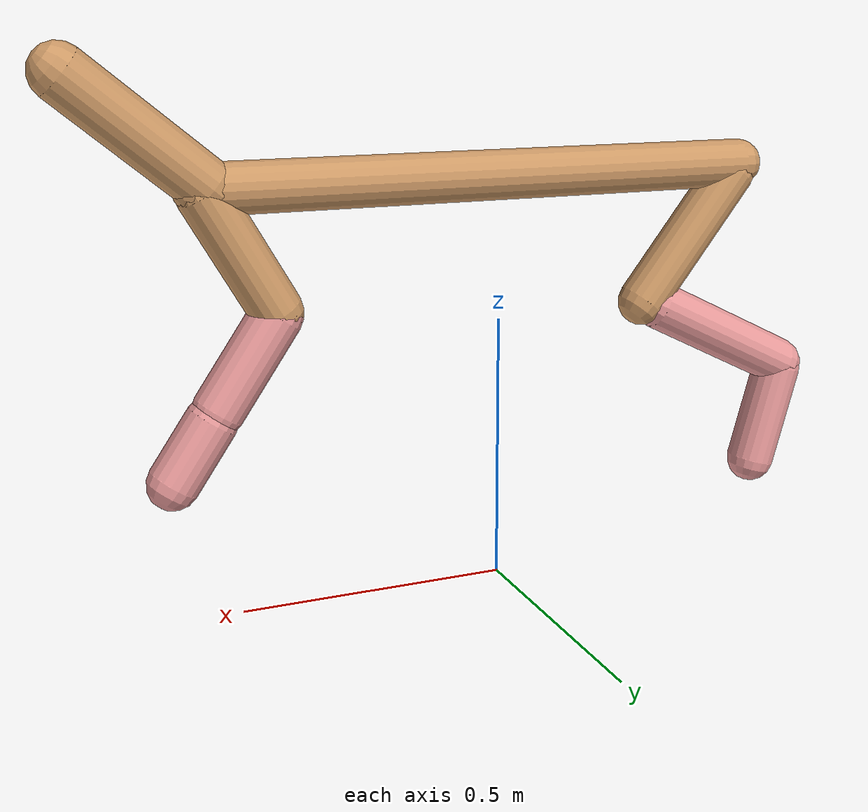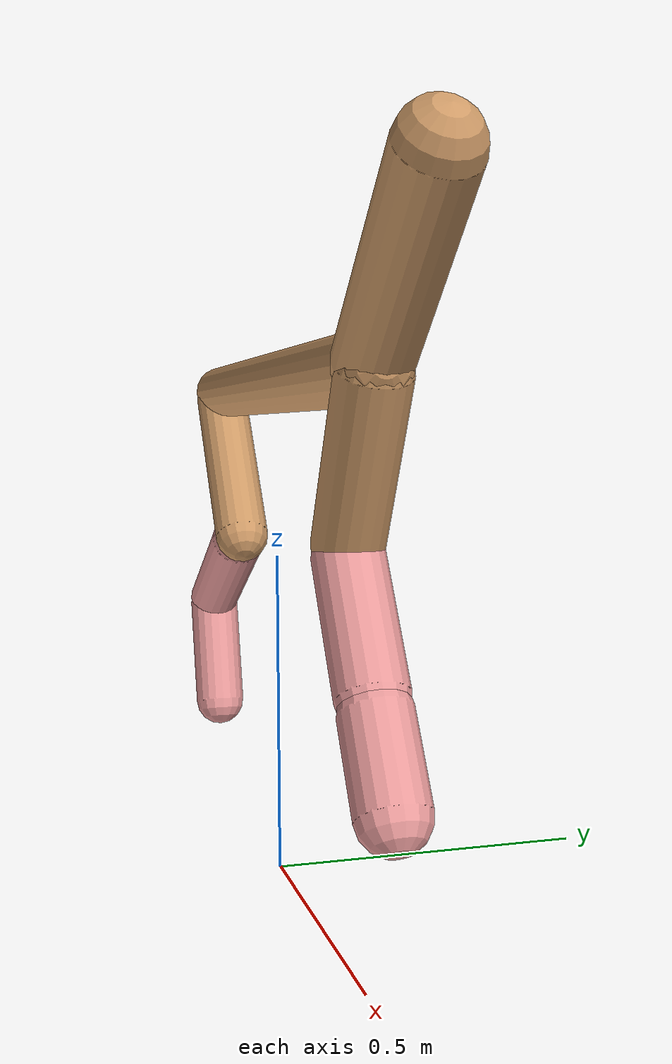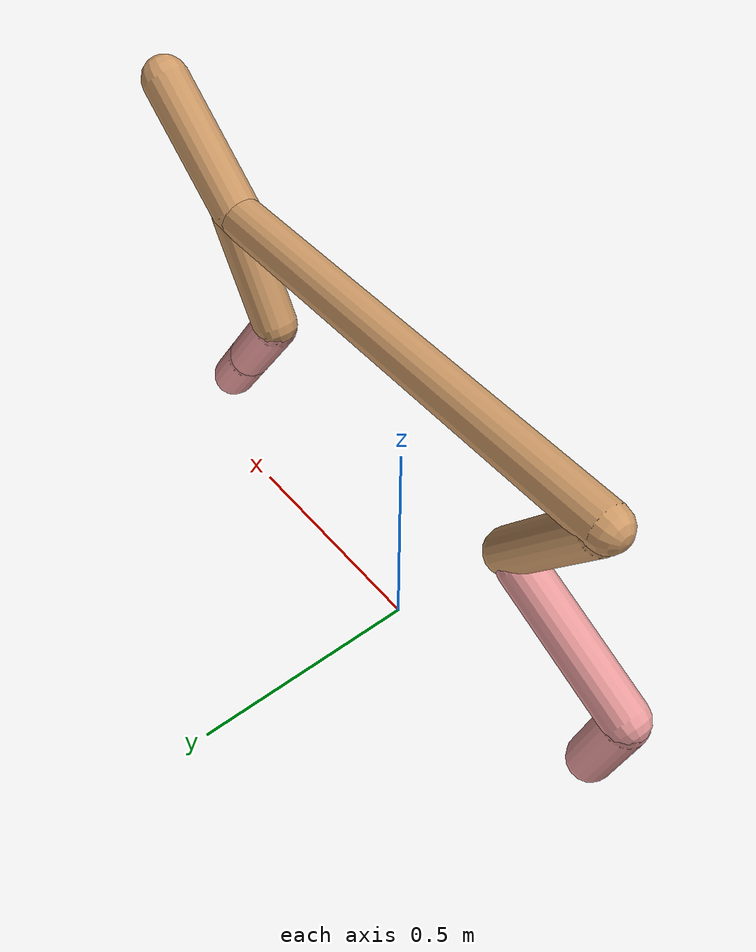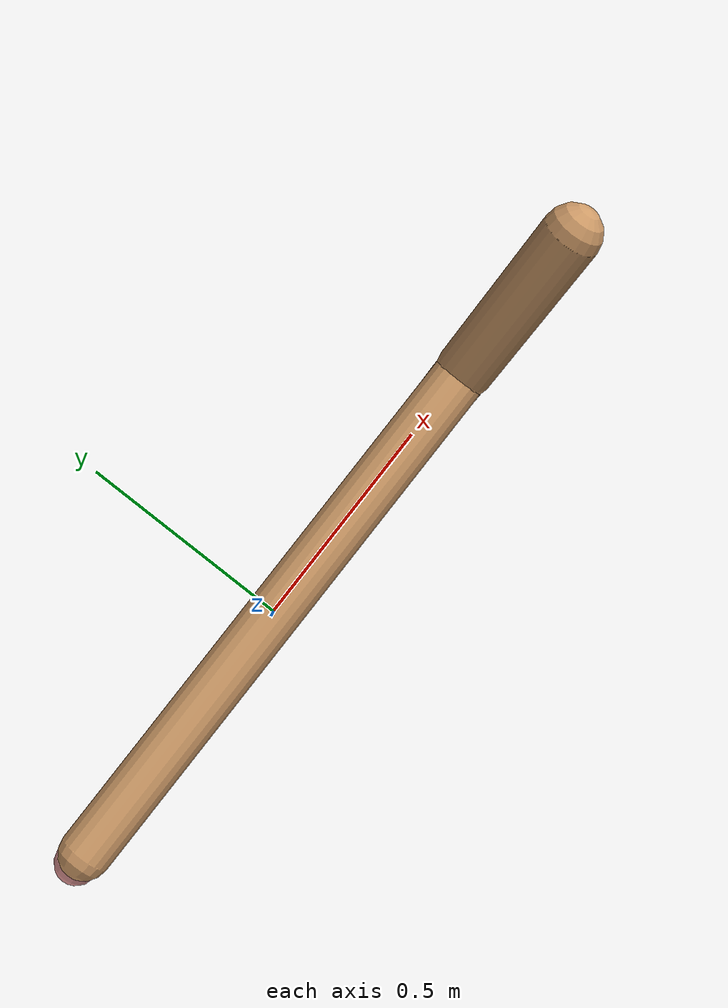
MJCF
<mujoco model="cheetah">
  <compiler angle="radian" coordinate="local" inertiafromgeom="true" settotalmass="14" />
  <default>
    <joint armature=".1" damping=".01" limited="true" solimplimit="0 .8 .03" solreflimit=".02 1" stiffness="8" />
    <geom conaffinity="0" condim="3" contype="1" friction="0.8 .1 .1" rgba="0.8 0.6 .4 1" solimp="0.0 0.8 0.01" solref="0.02 1" />
    <motor ctrllimited="true" ctrlrange="-1 1" />
  </default>
  <size nstack="300000" nuser_geom="1" />
  <option gravity="0 0 -9.81" timestep="0.01" />
  <worldbody>
    <body name="torso" pos="0.0 0.0 0.7671070549793689">
      <joint armature="0" axis="1 0 0" damping="0" limited="false" name="ignorex" pos="0 0 0" stiffness="0" type="slide" />
      <joint armature="0" axis="0 0 1" damping="0" limited="false" name="ignorez" pos="0 0 0" stiffness="0" type="slide" />
      <joint armature="0" axis="0 1 0" damping="0" limited="false" name="ignorey" pos="0 0 0" stiffness="0" type="hinge" />
      <geom fromto="-0.5 0.0 0.0 0.5457061783782993 0.0 0.0" name="torso" size="0.04582240751736434" type="capsule" />
      <geom axisangle="0 1 0 .87" name="head" pos="0.6457061783782992 0.0 0.1" size="0.04939058019749033 0.15" type="capsule" />

      <body name="bthigh" pos="-.5 0 0">
        <joint axis="0 1 0" damping="6" name="bthigh" pos="0 0 0" range="-.52 1.05" stiffness="240" type="hinge" />
        <geom axisangle="0 1 0 -3.8" name="bthigh" pos="0.10502780047858366 0.0 -0.13653614062215877" size="0.046147208788115436 0.15324620590848176" type="capsule" />
        <body name="bshin" pos="0.17005560095716732 0.0 -0.26307228124431753">
          <joint axis="0 1 0" damping="4.5" name="bshin" pos="0 0 0" range="-.785 .785" stiffness="180" type="hinge" />
          <geom axisangle="0 1 0 -2.03" name="bshin" pos="-0.14762996288323824 0.0 -0.07381498144161912" rgba="0.9 0.6 0.6 1" size="0.046147208788115436 0.15853055783636047" type="capsule" />
          <body name="bfoot" pos="-0.29525992576647647 0.0 -0.14762996288323824">
            <joint axis="0 1 0" damping="3" name="bfoot" pos="0 0 0" range="-.4 .785" stiffness="120" type="hinge" />
            <geom axisangle="0 1 0 -.27" name="bfoot" pos="0.03157952684444219 0.0 -0.10210713679702976" rgba="0.9 0.6 0.6 1" size="0.046147208788115436 0.09934581624411923" type="capsule" />
            <inertial mass="10" />
          </body>
        </body>
      </body>
      <body name="fthigh" pos="0.5457061783782993 0.0 0.0">
        <joint axis="0 1 0" damping="4.5" name="fthigh" pos="0 0 0" range="-1.5 0.8" stiffness="180" type="hinge" />
        <geom axisangle="0 1 0 .52" name="fthigh" pos="-0.064755716597344 0.0 -0.11100979988116114" size="0.04720276478506297 0.12259201236625719" type="capsule" />
        <body name="fshin" pos="-0.129511433194688 0.0 -0.22201959976232227">
          <joint axis="0 1 0" damping="3" name="fshin" pos="0 0 0" range="-1.2 1.1" stiffness="120" type="hinge" />
          <geom axisangle="0 1 0 -.6" name="fshin" pos="0.060143304397947045 0.0 -0.08327534455100359" rgba="0.9 0.6 0.6 1" size="0.04720276478506297 0.09770491211145309" type="capsule" />
          <body name="ffoot" pos="0.12028660879589409 0.0 -0.16655068910200718">
            <joint axis="0 1 0" damping="1.5" name="ffoot" pos="0 0 0" range="-3.1 -0.3" stiffness="60" type="hinge" />
            <geom axisangle="0 1 0 -.6" name="ffoot" pos="0.042037790356187654 0.0 -0.06539211833184748" rgba="0.9 0.6 0.6 1" size="0.04720276478506297 0.06452211177171431" type="capsule" />
            <inertial mass="10" />
          </body>
        </body>
      </body>
    </body>
  </worldbody>
  <actuator>
    <motor gear="120" joint="bthigh" name="bthigh" />
    <motor gear="90" joint="bshin" name="bshin" />
    <motor gear="60" joint="bfoot" name="bfoot" />
    <motor gear="120" joint="fthigh" name="fthigh" />
    <motor gear="60" joint="fshin" name="fshin" />
    <motor gear="30" joint="ffoot" name="ffoot" />
  </actuator>
</mujoco>
